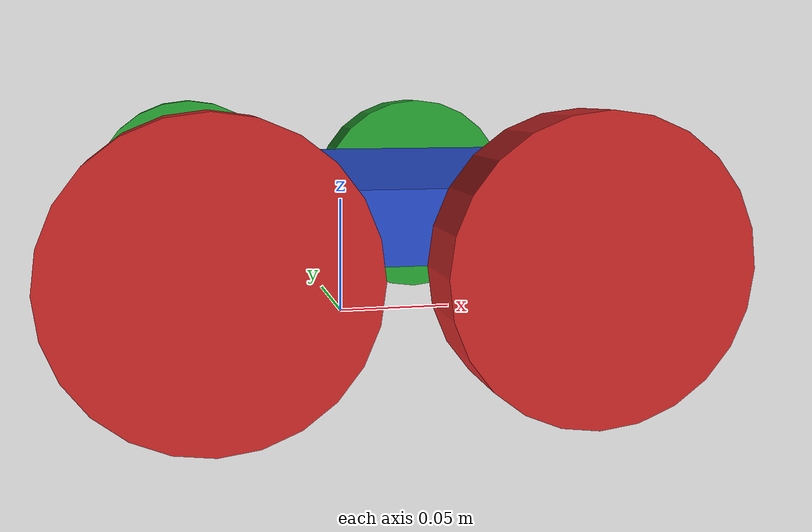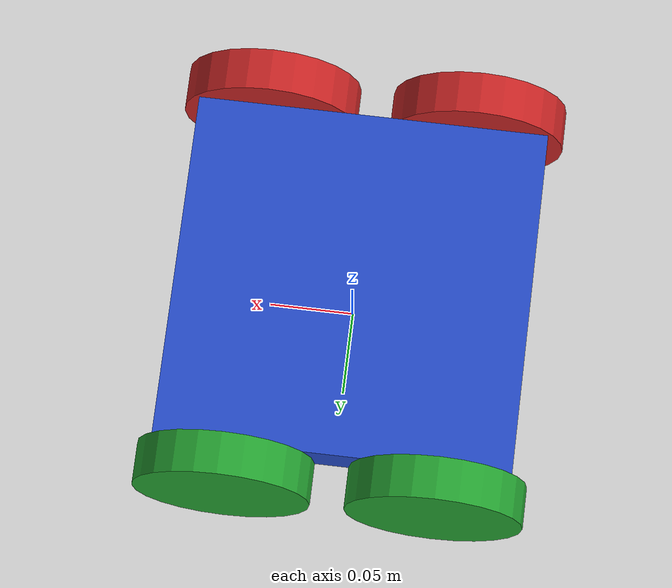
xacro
<?xml version="1.0"?>
<robot xmlns:xacro="http://www.ros.org/wiki/xacro">

    <xacro:property name="base_length" value="0.21" />
    <xacro:property name="base_width" value="0.21" />
    <xacro:property name="base_height" value="0.026" />
    <xacro:property name="wheel_length" value="0.025" />
    <xacro:property name="wheel_radius" value="0.0525" />
    <xacro:property name="wheel_separation" value="0.125" />
    <xacro:property name="wheel_mass" value="2.0" />
    <xacro:property name="base_mass" value="10.0" />

    <link name="base_footprint"/>

    <link name="base_link">
        <visual>
            <geometry>
                <box size="${base_length} ${base_width} ${base_height}"/>
            </geometry>
            <origin xyz="0 0 ${base_height / 2.0}" rpy="0 0 0"/>
            <material name="blue"/>
        </visual>
        <collision>
            <geometry>
                <box size="${base_length} ${base_width} ${base_height}"/>
            </geometry>
            <origin xyz="0 0 ${base_height / 2.0}" rpy="0 0 0"/>
        </collision>
        <xacro:box_inertia m="${base_mass}" l="${base_length}" w="${base_width}" h="${base_height}"
                           xyz="0 0 ${base_height / 2.0}" rpy="0 0 0" />
    </link>

    <xacro:macro name="wheel_link" params="prefix color">
        <link name="${prefix}_wheel_link">
            <visual>
                <geometry>
                    <cylinder radius="${wheel_radius}" length="${wheel_length}"/>
                </geometry>
                <origin xyz="0 0 0" rpy="${pi / 2.0} 0 0"/>
                <material name="${color}"/>
            </visual>
            <collision>
                <geometry>
                    <cylinder radius="${wheel_radius}" length="${wheel_length}"/>
                </geometry>
                <origin xyz="0 0 0" rpy="${pi / 2.0} 0 0"/>
            </collision>
            <xacro:cylinder_inertia m="${wheel_mass}" r="${wheel_radius}" h="${wheel_length}"
                            xyz="0 0 0" rpy="${pi / 2.0} 0 0"/>
        </link>
    </xacro:macro>

    <xacro:wheel_link prefix="left_front" color="green" />
    <xacro:wheel_link prefix="left_back" color="green" />
    <xacro:wheel_link prefix="right_front" color="red" />
    <xacro:wheel_link prefix="right_back" color="red"/>

    <joint name="base_joint" type="fixed">
        <parent link="base_footprint"/>
        <child link="base_link"/>
        <origin xyz="0 0 ${wheel_radius - (base_height / 2.0)}" rpy="0 0 0"/>
    </joint>

    <xacro:macro name="front_wheel_joint" params="prefix1 direction1 direction2">
        <joint name="${prefix1}_front_wheel_joint" type="continuous">
            <parent link="base_link"/>
            <child link="${prefix1}_front_wheel_link"/>
            <origin xyz="${direction1 * (wheel_separation / 2.0)} ${direction2 * ((base_width + wheel_length) / 2.0)} 0" rpy="0 0 0"/>
            <axis xyz="0 1 0"/>
        </joint>
    </xacro:macro>

    <xacro:front_wheel_joint prefix1="left" direction1="1" direction2="1" />
    <xacro:front_wheel_joint prefix1="right" direction1="1" direction2="-1" />

    <xacro:macro name="back_wheel_joint" params="prefix1 direction1 direction2">
        <joint name="${prefix1}_back_wheel_joint" type="continuous">
            <parent link="base_link"/>
            <child link="${prefix1}_back_wheel_link"/>
            <origin xyz="${direction1 * (wheel_separation / 2.0)} ${direction2 * ((base_width + wheel_length) / 2.0)} 0" rpy="0 0 0"/>
            <axis xyz="0 1 0"/>
            <mimic joint="${prefix1}_front_wheel_joint" multiplier="1" offset="0"/>
        </joint>
    </xacro:macro>

    <xacro:back_wheel_joint prefix1="left" direction1="-1" direction2="1" />
    <xacro:back_wheel_joint prefix1="right" direction1="-1" direction2="-1" />

</robot>
